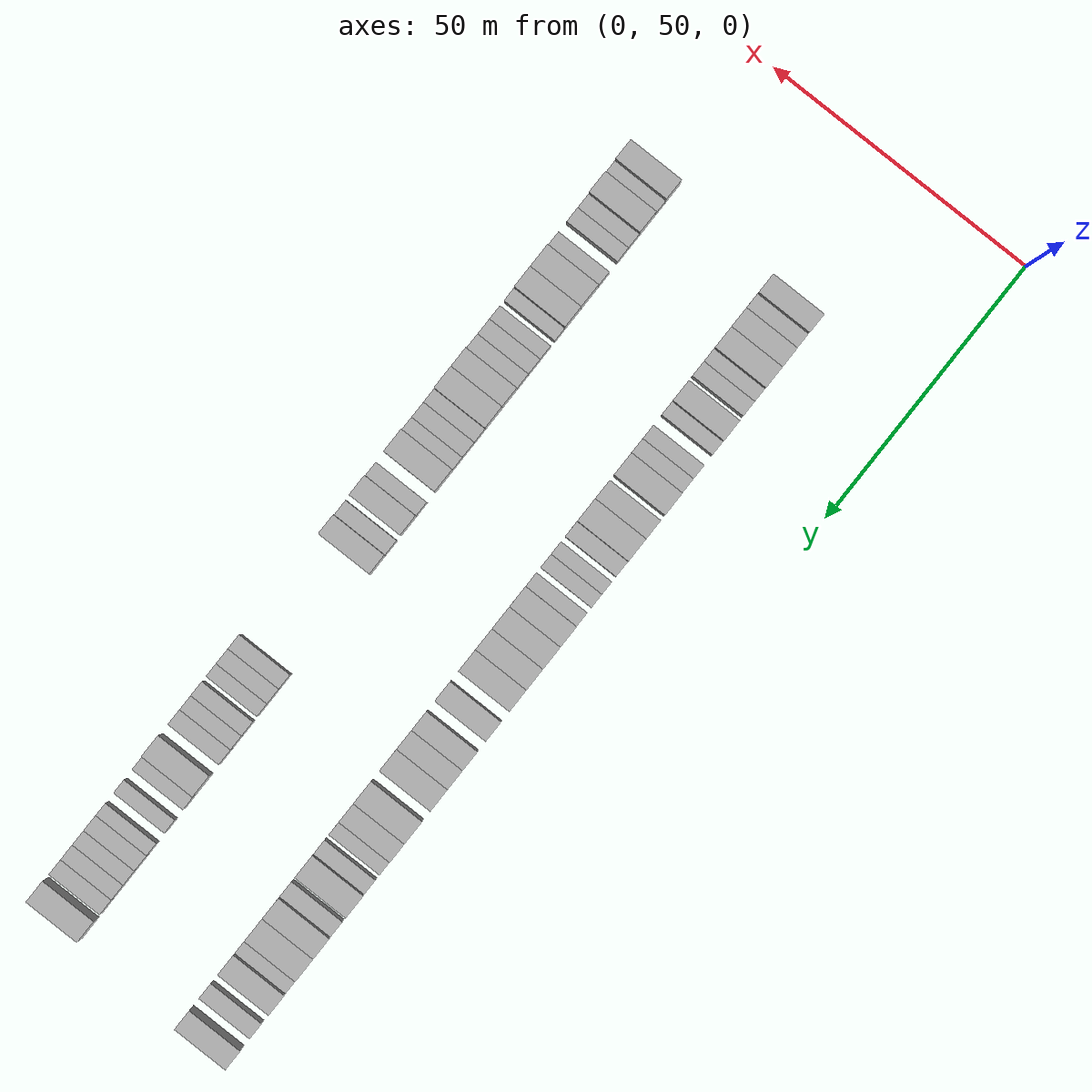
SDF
<sdf version="1.6">
 <world name="default">
  <model name="building_73">
   <static>1</static>
   <pose>25.0000 77.7991 0 0.000000 0.000000 0.000000</pose>
   <link name="link">
    <pose>0 0 4.50 0 0 0</pose>
    <collision name="collision"><geometry><box><size>10.0000 3.6522 9.0000</size></box></geometry></collision>
    <visual name="visual">
     <cast_shadows>0</cast_shadows>
     <geometry><box><size>10.0000 3.6522 9.0000</size></box></geometry>
     <material>
      <script>
       <uri>model://HANNAS_wall/materials/scripts</uri>
       <uri>model://HANNAS_wall/materials/textures</uri>
       <name>vrc/HANNAS_wall</name>
      </script>
     </material>
    </visual>
   </link>
  </model>
  <model name="building_74">
   <static>1</static>
   <pose>25.0000 81.1143 0 0.000000 0.000000 0.000000</pose>
   <link name="link">
    <pose>0 0 3.00 0 0 0</pose>
    <collision name="collision"><geometry><box><size>10.0000 2.9782 6.0000</size></box></geometry></collision>
    <visual name="visual">
     <cast_shadows>0</cast_shadows>
     <geometry><box><size>10.0000 2.9782 6.0000</size></box></geometry>
     <material>
      <script>
       <uri>model://HANNAS_wall/materials/scripts</uri>
       <uri>model://HANNAS_wall/materials/textures</uri>
       <name>vrc/HANNAS_wall</name>
      </script>
     </material>
    </visual>
   </link>
  </model>
  <model name="building_75">
   <static>1</static>
   <pose>25.0000 84.4601 0 0.000000 0.000000 0.000000</pose>
   <link name="link">
    <pose>0 0 4.50 0 0 0</pose>
    <collision name="collision"><geometry><box><size>10.0000 3.7134 9.0000</size></box></geometry></collision>
    <visual name="visual">
     <cast_shadows>0</cast_shadows>
     <geometry><box><size>10.0000 3.7134 9.0000</size></box></geometry>
     <material>
      <script>
       <uri>model://HANNAS_wall/materials/scripts</uri>
       <uri>model://HANNAS_wall/materials/textures</uri>
       <name>vrc/HANNAS_wall</name>
      </script>
     </material>
    </visual>
   </link>
  </model>
  <model name="building_76">
   <static>1</static>
   <pose>25.0000 88.3780 0 0.000000 0.000000 0.000000</pose>
   <link name="link">
    <pose>0 0 4.50 0 0 0</pose>
    <collision name="collision"><geometry><box><size>10.0000 4.1222 9.0000</size></box></geometry></collision>
    <visual name="visual">
     <cast_shadows>0</cast_shadows>
     <geometry><box><size>10.0000 4.1222 9.0000</size></box></geometry>
     <material>
      <script>
       <uri>model://HANNAS_wall/materials/scripts</uri>
       <uri>model://HANNAS_wall/materials/textures</uri>
       <name>vrc/HANNAS_wall</name>
      </script>
     </material>
    </visual>
   </link>
  </model>
  <model name="building_77">
   <static>1</static>
   <pose>25.0000 91.6928 0 0.000000 0.000000 0.000000</pose>
   <link name="link">
    <pose>0 0 3.00 0 0 0</pose>
    <collision name="collision"><geometry><box><size>10.0000 2.5074 6.0000</size></box></geometry></collision>
    <visual name="visual">
     <cast_shadows>0</cast_shadows>
     <geometry><box><size>10.0000 2.5074 6.0000</size></box></geometry>
     <material>
      <script>
       <uri>model://HANNAS_wall/materials/scripts</uri>
       <uri>model://HANNAS_wall/materials/textures</uri>
       <name>vrc/HANNAS_wall</name>
      </script>
     </material>
    </visual>
   </link>
  </model>
  <model name="building_78">
   <static>1</static>
   <pose>25.0000 94.3955 0 0.000000 0.000000 0.000000</pose>
   <link name="link">
    <pose>0 0 3.00 0 0 0</pose>
    <collision name="collision"><geometry><box><size>10.0000 2.8981 6.0000</size></box></geometry></collision>
    <visual name="visual">
     <cast_shadows>0</cast_shadows>
     <geometry><box><size>10.0000 2.8981 6.0000</size></box></geometry>
     <material>
      <script>
       <uri>model://HANNAS_wall/materials/scripts</uri>
       <uri>model://HANNAS_wall/materials/textures</uri>
       <name>vrc/HANNAS_wall</name>
      </script>
     </material>
    </visual>
   </link>
  </model>
  <model name="building_79">
   <static>1</static>
   <pose>25.0000 98.8417 0 0.000000 0.000000 0.000000</pose>
   <link name="link">
    <pose>0 0 4.50 0 0 0</pose>
    <collision name="collision"><geometry><box><size>10.0000 3.9943 9.0000</size></box></geometry></collision>
    <visual name="visual">
     <cast_shadows>0</cast_shadows>
     <geometry><box><size>10.0000 3.9943 9.0000</size></box></geometry>
     <material>
      <script>
       <uri>model://HANNAS_wall/materials/scripts</uri>
       <uri>model://HANNAS_wall/materials/textures</uri>
       <name>vrc/HANNAS_wall</name>
      </script>
     </material>
    </visual>
   </link>
  </model>
  <model name="building_80">
   <static>1</static>
   <pose>25.0000 102.1693 0 0.000000 0.000000 0.000000</pose>
   <link name="link">
    <pose>0 0 3.00 0 0 0</pose>
    <collision name="collision"><geometry><box><size>10.0000 2.6611 6.0000</size></box></geometry></collision>
    <visual name="visual">
     <cast_shadows>0</cast_shadows>
     <geometry><box><size>10.0000 2.6611 6.0000</size></box></geometry>
     <material>
      <script>
       <uri>model://HANNAS_wall/materials/scripts</uri>
       <uri>model://HANNAS_wall/materials/textures</uri>
       <name>vrc/HANNAS_wall</name>
      </script>
     </material>
    </visual>
   </link>
  </model>
  <model name="building_81">
   <static>1</static>
   <pose>25.0000 106.8266 0 0.000000 0.000000 0.000000</pose>
   <link name="link">
    <pose>0 0 3.00 0 0 0</pose>
    <collision name="collision"><geometry><box><size>10.0000 2.6534 6.0000</size></box></geometry></collision>
    <visual name="visual">
     <cast_shadows>0</cast_shadows>
     <geometry><box><size>10.0000 2.6534 6.0000</size></box></geometry>
     <material>
      <script>
       <uri>model://HANNAS_wall/materials/scripts</uri>
       <uri>model://HANNAS_wall/materials/textures</uri>
       <name>vrc/HANNAS_wall</name>
      </script>
     </material>
    </visual>
   </link>
  </model>
  <model name="building_82">
   <static>1</static>
   <pose>25.0000 109.5996 0 0.000000 0.000000 0.000000</pose>
   <link name="link">
    <pose>0 0 3.00 0 0 0</pose>
    <collision name="collision"><geometry><box><size>10.0000 2.8927 6.0000</size></box></geometry></collision>
    <visual name="visual">
     <cast_shadows>0</cast_shadows>
     <geometry><box><size>10.0000 2.8927 6.0000</size></box></geometry>
     <material>
      <script>
       <uri>model://HANNAS_wall/materials/scripts</uri>
       <uri>model://HANNAS_wall/materials/textures</uri>
       <name>vrc/HANNAS_wall</name>
      </script>
     </material>
    </visual>
   </link>
  </model>
  <model name="building_83">
   <static>1</static>
   <pose>25.0000 113.2344 0 0.000000 0.000000 0.000000</pose>
   <link name="link">
    <pose>0 0 4.50 0 0 0</pose>
    <collision name="collision"><geometry><box><size>10.0000 4.3769 9.0000</size></box></geometry></collision>
    <visual name="visual">
     <cast_shadows>0</cast_shadows>
     <geometry><box><size>10.0000 4.3769 9.0000</size></box></geometry>
     <material>
      <script>
       <uri>model://HANNAS_wall/materials/scripts</uri>
       <uri>model://HANNAS_wall/materials/textures</uri>
       <name>vrc/HANNAS_wall</name>
      </script>
     </material>
    </visual>
   </link>
  </model>
  <model name="building_84">
   <static>1</static>
   <pose>25.0000 118.2288 0 0.000000 0.000000 0.000000</pose>
   <link name="link">
    <pose>0 0 4.50 0 0 0</pose>
    <collision name="collision"><geometry><box><size>10.0000 3.6120 9.0000</size></box></geometry></collision>
    <visual name="visual">
     <cast_shadows>0</cast_shadows>
     <geometry><box><size>10.0000 3.6120 9.0000</size></box></geometry>
     <material>
      <script>
       <uri>model://HANNAS_wall/materials/scripts</uri>
       <uri>model://HANNAS_wall/materials/textures</uri>
       <name>vrc/HANNAS_wall</name>
      </script>
     </material>
    </visual>
   </link>
  </model>
  <model name="building_85">
   <static>1</static>
   <pose>25.0000 122.2473 0 0.000000 0.000000 0.000000</pose>
   <link name="link">
    <pose>0 0 4.50 0 0 0</pose>
    <collision name="collision"><geometry><box><size>10.0000 4.4248 9.0000</size></box></geometry></collision>
    <visual name="visual">
     <cast_shadows>0</cast_shadows>
     <geometry><box><size>10.0000 4.4248 9.0000</size></box></geometry>
     <material>
      <script>
       <uri>model://HANNAS_wall/materials/scripts</uri>
       <uri>model://HANNAS_wall/materials/textures</uri>
       <name>vrc/HANNAS_wall</name>
      </script>
     </material>
    </visual>
   </link>
  </model>
  <model name="building_86">
   <static>1</static>
   <pose>25.0000 125.9503 0 0.000000 0.000000 0.000000</pose>
   <link name="link">
    <pose>0 0 3.00 0 0 0</pose>
    <collision name="collision"><geometry><box><size>10.0000 2.9812 6.0000</size></box></geometry></collision>
    <visual name="visual">
     <cast_shadows>0</cast_shadows>
     <geometry><box><size>10.0000 2.9812 6.0000</size></box></geometry>
     <material>
      <script>
       <uri>model://HANNAS_wall/materials/scripts</uri>
       <uri>model://HANNAS_wall/materials/textures</uri>
       <name>vrc/HANNAS_wall</name>
      </script>
     </material>
    </visual>
   </link>
  </model>
  <model name="building_87">
   <static>1</static>
   <pose>25.0000 129.6776 0 0.000000 0.000000 0.000000</pose>
   <link name="link">
    <pose>0 0 3.00 0 0 0</pose>
    <collision name="collision"><geometry><box><size>10.0000 2.4734 6.0000</size></box></geometry></collision>
    <visual name="visual">
     <cast_shadows>0</cast_shadows>
     <geometry><box><size>10.0000 2.4734 6.0000</size></box></geometry>
     <material>
      <script>
       <uri>model://HANNAS_wall/materials/scripts</uri>
       <uri>model://HANNAS_wall/materials/textures</uri>
       <name>vrc/HANNAS_wall</name>
      </script>
     </material>
    </visual>
   </link>
  </model>
  <model name="building_88">
   <static>1</static>
   <pose>25.0000 132.2294 0 0.000000 0.000000 0.000000</pose>
   <link name="link">
    <pose>0 0 3.00 0 0 0</pose>
    <collision name="collision"><geometry><box><size>10.0000 2.6303 6.0000</size></box></geometry></collision>
    <visual name="visual">
     <cast_shadows>0</cast_shadows>
     <geometry><box><size>10.0000 2.6303 6.0000</size></box></geometry>
     <material>
      <script>
       <uri>model://HANNAS_wall/materials/scripts</uri>
       <uri>model://HANNAS_wall/materials/textures</uri>
       <name>vrc/HANNAS_wall</name>
      </script>
     </material>
    </visual>
   </link>
  </model>
  <model name="building_89">
   <static>1</static>
   <pose>25.0000 135.8894 0 0.000000 0.000000 0.000000</pose>
   <link name="link">
    <pose>0 0 3.00 0 0 0</pose>
    <collision name="collision"><geometry><box><size>10.0000 2.6897 6.0000</size></box></geometry></collision>
    <visual name="visual">
     <cast_shadows>0</cast_shadows>
     <geometry><box><size>10.0000 2.6897 6.0000</size></box></geometry>
     <material>
      <script>
       <uri>model://HANNAS_wall/materials/scripts</uri>
       <uri>model://HANNAS_wall/materials/textures</uri>
       <name>vrc/HANNAS_wall</name>
      </script>
     </material>
    </visual>
   </link>
  </model>
  <model name="building_90">
   <static>1</static>
   <pose>25.0000 139.2452 0 0.000000 0.000000 0.000000</pose>
   <link name="link">
    <pose>0 0 4.50 0 0 0</pose>
    <collision name="collision"><geometry><box><size>10.0000 4.0219 9.0000</size></box></geometry></collision>
    <visual name="visual">
     <cast_shadows>0</cast_shadows>
     <geometry><box><size>10.0000 4.0219 9.0000</size></box></geometry>
     <material>
      <script>
       <uri>model://HANNAS_wall/materials/scripts</uri>
       <uri>model://HANNAS_wall/materials/textures</uri>
       <name>vrc/HANNAS_wall</name>
      </script>
     </material>
    </visual>
   </link>
  </model>
  <model name="building_91">
   <static>1</static>
   <pose>25.0000 143.4136 0 0.000000 0.000000 0.000000</pose>
   <link name="link">
    <pose>0 0 4.50 0 0 0</pose>
    <collision name="collision"><geometry><box><size>10.0000 4.3149 9.0000</size></box></geometry></collision>
    <visual name="visual">
     <cast_shadows>0</cast_shadows>
     <geometry><box><size>10.0000 4.3149 9.0000</size></box></geometry>
     <material>
      <script>
       <uri>model://HANNAS_wall/materials/scripts</uri>
       <uri>model://HANNAS_wall/materials/textures</uri>
       <name>vrc/HANNAS_wall</name>
      </script>
     </material>
    </visual>
   </link>
  </model>
  <model name="building_92">
   <static>1</static>
   <pose>25.0000 147.6198 0 0.000000 0.000000 0.000000</pose>
   <link name="link">
    <pose>0 0 4.50 0 0 0</pose>
    <collision name="collision"><geometry><box><size>10.0000 4.0975 9.0000</size></box></geometry></collision>
    <visual name="visual">
     <cast_shadows>0</cast_shadows>
     <geometry><box><size>10.0000 4.0975 9.0000</size></box></geometry>
     <material>
      <script>
       <uri>model://HANNAS_wall/materials/scripts</uri>
       <uri>model://HANNAS_wall/materials/textures</uri>
       <name>vrc/HANNAS_wall</name>
      </script>
     </material>
    </visual>
   </link>
  </model>
  <model name="building_93">
   <static>1</static>
   <pose>25.0000 151.7770 0 0.000000 0.000000 0.000000</pose>
   <link name="link">
    <pose>0 0 4.50 0 0 0</pose>
    <collision name="collision"><geometry><box><size>10.0000 4.2167 9.0000</size></box></geometry></collision>
    <visual name="visual">
     <cast_shadows>0</cast_shadows>
     <geometry><box><size>10.0000 4.2167 9.0000</size></box></geometry>
     <material>
      <script>
       <uri>model://HANNAS_wall/materials/scripts</uri>
       <uri>model://HANNAS_wall/materials/textures</uri>
       <name>vrc/HANNAS_wall</name>
      </script>
     </material>
    </visual>
   </link>
  </model>
  <model name="building_94">
   <static>1</static>
   <pose>25.0000 157.8093 0 0.000000 0.000000 0.000000</pose>
   <link name="link">
    <pose>0 0 4.50 0 0 0</pose>
    <collision name="collision"><geometry><box><size>10.0000 3.8479 9.0000</size></box></geometry></collision>
    <visual name="visual">
     <cast_shadows>0</cast_shadows>
     <geometry><box><size>10.0000 3.8479 9.0000</size></box></geometry>
     <material>
      <script>
       <uri>model://HANNAS_wall/materials/scripts</uri>
       <uri>model://HANNAS_wall/materials/textures</uri>
       <name>vrc/HANNAS_wall</name>
      </script>
     </material>
    </visual>
   </link>
  </model>
  <model name="building_95">
   <static>1</static>
   <pose>25.0000 163.5877 0 0.000000 0.000000 0.000000</pose>
   <link name="link">
    <pose>0 0 4.50 0 0 0</pose>
    <collision name="collision"><geometry><box><size>10.0000 3.7090 9.0000</size></box></geometry></collision>
    <visual name="visual">
     <cast_shadows>0</cast_shadows>
     <geometry><box><size>10.0000 3.7090 9.0000</size></box></geometry>
     <material>
      <script>
       <uri>model://HANNAS_wall/materials/scripts</uri>
       <uri>model://HANNAS_wall/materials/textures</uri>
       <name>vrc/HANNAS_wall</name>
      </script>
     </material>
    </visual>
   </link>
  </model>
  <model name="building_96">
   <static>1</static>
   <pose>25.0000 167.3024 0 0.000000 0.000000 0.000000</pose>
   <link name="link">
    <pose>0 0 4.50 0 0 0</pose>
    <collision name="collision"><geometry><box><size>10.0000 3.7203 9.0000</size></box></geometry></collision>
    <visual name="visual">
     <cast_shadows>0</cast_shadows>
     <geometry><box><size>10.0000 3.7203 9.0000</size></box></geometry>
     <material>
      <script>
       <uri>model://HANNAS_wall/materials/scripts</uri>
       <uri>model://HANNAS_wall/materials/textures</uri>
       <name>vrc/HANNAS_wall</name>
      </script>
     </material>
    </visual>
   </link>
  </model>
  <model name="building_97">
   <static>1</static>
   <pose>25.0000 171.2899 0 0.000000 0.000000 0.000000</pose>
   <link name="link">
    <pose>0 0 4.50 0 0 0</pose>
    <collision name="collision"><geometry><box><size>10.0000 4.2546 9.0000</size></box></geometry></collision>
    <visual name="visual">
     <cast_shadows>0</cast_shadows>
     <geometry><box><size>10.0000 4.2546 9.0000</size></box></geometry>
     <material>
      <script>
       <uri>model://HANNAS_wall/materials/scripts</uri>
       <uri>model://HANNAS_wall/materials/textures</uri>
       <name>vrc/HANNAS_wall</name>
      </script>
     </material>
    </visual>
   </link>
  </model>
  <model name="building_98">
   <static>1</static>
   <pose>25.0000 177.6212 0 0.000000 0.000000 0.000000</pose>
   <link name="link">
    <pose>0 0 4.50 0 0 0</pose>
    <collision name="collision"><geometry><box><size>10.0000 4.4081 9.0000</size></box></geometry></collision>
    <visual name="visual">
     <cast_shadows>0</cast_shadows>
     <geometry><box><size>10.0000 4.4081 9.0000</size></box></geometry>
     <material>
      <script>
       <uri>model://HANNAS_wall/materials/scripts</uri>
       <uri>model://HANNAS_wall/materials/textures</uri>
       <name>vrc/HANNAS_wall</name>
      </script>
     </material>
    </visual>
   </link>
  </model>
  <model name="building_99">
   <static>1</static>
   <pose>25.0000 181.6333 0 0.000000 0.000000 0.000000</pose>
   <link name="link">
    <pose>0 0 4.50 0 0 0</pose>
    <collision name="collision"><geometry><box><size>10.0000 3.6160 9.0000</size></box></geometry></collision>
    <visual name="visual">
     <cast_shadows>0</cast_shadows>
     <geometry><box><size>10.0000 3.6160 9.0000</size></box></geometry>
     <material>
      <script>
       <uri>model://HANNAS_wall/materials/scripts</uri>
       <uri>model://HANNAS_wall/materials/textures</uri>
       <name>vrc/HANNAS_wall</name>
      </script>
     </material>
    </visual>
   </link>
  </model>
  <model name="building_100">
   <static>1</static>
   <pose>25.0000 184.7807 0 0.000000 0.000000 0.000000</pose>
   <link name="link">
    <pose>0 0 3.00 0 0 0</pose>
    <collision name="collision"><geometry><box><size>10.0000 2.6788 6.0000</size></box></geometry></collision>
    <visual name="visual">
     <cast_shadows>0</cast_shadows>
     <geometry><box><size>10.0000 2.6788 6.0000</size></box></geometry>
     <material>
      <script>
       <uri>model://HANNAS_wall/materials/scripts</uri>
       <uri>model://HANNAS_wall/materials/textures</uri>
       <name>vrc/HANNAS_wall</name>
      </script>
     </material>
    </visual>
   </link>
  </model>
  <model name="building_101">
   <static>1</static>
   <pose>25.0000 188.5256 0 0.000000 0.000000 0.000000</pose>
   <link name="link">
    <pose>0 0 3.00 0 0 0</pose>
    <collision name="collision"><geometry><box><size>10.0000 2.8111 6.0000</size></box></geometry></collision>
    <visual name="visual">
     <cast_shadows>0</cast_shadows>
     <geometry><box><size>10.0000 2.8111 6.0000</size></box></geometry>
     <material>
      <script>
       <uri>model://HANNAS_wall/materials/scripts</uri>
       <uri>model://HANNAS_wall/materials/textures</uri>
       <name>vrc/HANNAS_wall</name>
      </script>
     </material>
    </visual>
   </link>
  </model>
  <model name="building_102">
   <static>1</static>
   <pose>25.0000 192.1229 0 0.000000 0.000000 0.000000</pose>
   <link name="link">
    <pose>0 0 4.50 0 0 0</pose>
    <collision name="collision"><geometry><box><size>10.0000 4.3834 9.0000</size></box></geometry></collision>
    <visual name="visual">
     <cast_shadows>0</cast_shadows>
     <geometry><box><size>10.0000 4.3834 9.0000</size></box></geometry>
     <material>
      <script>
       <uri>model://HANNAS_wall/materials/scripts</uri>
       <uri>model://HANNAS_wall/materials/textures</uri>
       <name>vrc/HANNAS_wall</name>
      </script>
     </material>
    </visual>
   </link>
  </model>
  <model name="building_103">
   <static>1</static>
   <pose>25.0000 196.8134 0 0.000000 0.000000 0.000000</pose>
   <link name="link">
    <pose>0 0 3.00 0 0 0</pose>
    <collision name="collision"><geometry><box><size>10.0000 2.9978 6.0000</size></box></geometry></collision>
    <visual name="visual">
     <cast_shadows>0</cast_shadows>
     <geometry><box><size>10.0000 2.9978 6.0000</size></box></geometry>
     <material>
      <script>
       <uri>model://HANNAS_wall/materials/scripts</uri>
       <uri>model://HANNAS_wall/materials/textures</uri>
       <name>vrc/HANNAS_wall</name>
      </script>
     </material>
    </visual>
   </link>
  </model>
  <model name="building_104">
   <static>1</static>
   <pose>25.0000 200.3307 0 0.000000 0.000000 0.000000</pose>
   <link name="link">
    <pose>0 0 4.50 0 0 0</pose>
    <collision name="collision"><geometry><box><size>10.0000 4.0368 9.0000</size></box></geometry></collision>
    <visual name="visual">
     <cast_shadows>0</cast_shadows>
     <geometry><box><size>10.0000 4.0368 9.0000</size></box></geometry>
     <material>
      <script>
       <uri>model://HANNAS_wall/materials/scripts</uri>
       <uri>model://HANNAS_wall/materials/textures</uri>
       <name>vrc/HANNAS_wall</name>
      </script>
     </material>
    </visual>
   </link>
  </model>
  <model name="building_105">
   <static>1</static>
   <pose>25.0000 204.5624 0 0.000000 0.000000 0.000000</pose>
   <link name="link">
    <pose>0 0 4.50 0 0 0</pose>
    <collision name="collision"><geometry><box><size>10.0000 4.4266 9.0000</size></box></geometry></collision>
    <visual name="visual">
     <cast_shadows>0</cast_shadows>
     <geometry><box><size>10.0000 4.4266 9.0000</size></box></geometry>
     <material>
      <script>
       <uri>model://HANNAS_wall/materials/scripts</uri>
       <uri>model://HANNAS_wall/materials/textures</uri>
       <name>vrc/HANNAS_wall</name>
      </script>
     </material>
    </visual>
   </link>
  </model>
  <model name="building_106">
   <static>1</static>
   <pose>25.0000 208.1058 0 0.000000 0.000000 0.000000</pose>
   <link name="link">
    <pose>0 0 3.00 0 0 0</pose>
    <collision name="collision"><geometry><box><size>10.0000 2.6601 6.0000</size></box></geometry></collision>
    <visual name="visual">
     <cast_shadows>0</cast_shadows>
     <geometry><box><size>10.0000 2.6601 6.0000</size></box></geometry>
     <material>
      <script>
       <uri>model://HANNAS_wall/materials/scripts</uri>
       <uri>model://HANNAS_wall/materials/textures</uri>
       <name>vrc/HANNAS_wall</name>
      </script>
     </material>
    </visual>
   </link>
  </model>
  <model name="building_107">
   <static>1</static>
   <pose>25.0000 211.3863 0 0.000000 0.000000 0.000000</pose>
   <link name="link">
    <pose>0 0 4.50 0 0 0</pose>
    <collision name="collision"><geometry><box><size>10.0000 3.9011 9.0000</size></box></geometry></collision>
    <visual name="visual">
     <cast_shadows>0</cast_shadows>
     <geometry><box><size>10.0000 3.9011 9.0000</size></box></geometry>
     <material>
      <script>
       <uri>model://HANNAS_wall/materials/scripts</uri>
       <uri>model://HANNAS_wall/materials/textures</uri>
       <name>vrc/HANNAS_wall</name>
      </script>
     </material>
    </visual>
   </link>
  </model>
  <model name="building_108">
   <static>1</static>
   <pose>25.0000 216.8209 0 0.000000 0.000000 0.000000</pose>
   <link name="link">
    <pose>0 0 3.00 0 0 0</pose>
    <collision name="collision"><geometry><box><size>10.0000 2.9682 6.0000</size></box></geometry></collision>
    <visual name="visual">
     <cast_shadows>0</cast_shadows>
     <geometry><box><size>10.0000 2.9682 6.0000</size></box></geometry>
     <material>
      <script>
       <uri>model://HANNAS_wall/materials/scripts</uri>
       <uri>model://HANNAS_wall/materials/textures</uri>
       <name>vrc/HANNAS_wall</name>
      </script>
     </material>
    </visual>
   </link>
  </model>
  <model name="building_109">
   <static>1</static>
   <pose>25.0000 222.1481 0 0.000000 0.000000 0.000000</pose>
   <link name="link">
    <pose>0 0 4.50 0 0 0</pose>
    <collision name="collision"><geometry><box><size>10.0000 3.6861 9.0000</size></box></geometry></collision>
    <visual name="visual">
     <cast_shadows>0</cast_shadows>
     <geometry><box><size>10.0000 3.6861 9.0000</size></box></geometry>
     <material>
      <script>
       <uri>model://HANNAS_wall/materials/scripts</uri>
       <uri>model://HANNAS_wall/materials/textures</uri>
       <name>vrc/HANNAS_wall</name>
      </script>
     </material>
    </visual>
   </link>
  </model>
  <model name="building_184">
   <static>1</static>
   <pose>55.0000 75.3017 0 0.000000 0.000000 0.000000</pose>
   <link name="link">
    <pose>0 0 4.50 0 0 0</pose>
    <collision name="collision"><geometry><box><size>10.0000 3.8139 9.0000</size></box></geometry></collision>
    <visual name="visual">
     <cast_shadows>0</cast_shadows>
     <geometry><box><size>10.0000 3.8139 9.0000</size></box></geometry>
     <material>
      <script>
       <uri>model://HANNAS_wall/materials/scripts</uri>
       <uri>model://HANNAS_wall/materials/textures</uri>
       <name>vrc/HANNAS_wall</name>
      </script>
     </material>
    </visual>
   </link>
  </model>
  <model name="building_185">
   <static>1</static>
   <pose>55.0000 78.4213 0 0.000000 0.000000 0.000000</pose>
   <link name="link">
    <pose>0 0 3.00 0 0 0</pose>
    <collision name="collision"><geometry><box><size>10.0000 2.4255 6.0000</size></box></geometry></collision>
    <visual name="visual">
     <cast_shadows>0</cast_shadows>
     <geometry><box><size>10.0000 2.4255 6.0000</size></box></geometry>
     <material>
      <script>
       <uri>model://HANNAS_wall/materials/scripts</uri>
       <uri>model://HANNAS_wall/materials/textures</uri>
       <name>vrc/HANNAS_wall</name>
      </script>
     </material>
    </visual>
   </link>
  </model>
  <model name="building_186">
   <static>1</static>
   <pose>55.0000 81.6905 0 0.000000 0.000000 0.000000</pose>
   <link name="link">
    <pose>0 0 4.50 0 0 0</pose>
    <collision name="collision"><geometry><box><size>10.0000 4.1129 9.0000</size></box></geometry></collision>
    <visual name="visual">
     <cast_shadows>0</cast_shadows>
     <geometry><box><size>10.0000 4.1129 9.0000</size></box></geometry>
     <material>
      <script>
       <uri>model://HANNAS_wall/materials/scripts</uri>
       <uri>model://HANNAS_wall/materials/textures</uri>
       <name>vrc/HANNAS_wall</name>
      </script>
     </material>
    </visual>
   </link>
  </model>
  <model name="building_187">
   <static>1</static>
   <pose>55.0000 85.1039 0 0.000000 0.000000 0.000000</pose>
   <link name="link">
    <pose>0 0 3.00 0 0 0</pose>
    <collision name="collision"><geometry><box><size>10.0000 2.7139 6.0000</size></box></geometry></collision>
    <visual name="visual">
     <cast_shadows>0</cast_shadows>
     <geometry><box><size>10.0000 2.7139 6.0000</size></box></geometry>
     <material>
      <script>
       <uri>model://HANNAS_wall/materials/scripts</uri>
       <uri>model://HANNAS_wall/materials/textures</uri>
       <name>vrc/HANNAS_wall</name>
      </script>
     </material>
    </visual>
   </link>
  </model>
  <model name="building_188">
   <static>1</static>
   <pose>55.0000 87.8392 0 0.000000 0.000000 0.000000</pose>
   <link name="link">
    <pose>0 0 3.00 0 0 0</pose>
    <collision name="collision"><geometry><box><size>10.0000 2.7565 6.0000</size></box></geometry></collision>
    <visual name="visual">
     <cast_shadows>0</cast_shadows>
     <geometry><box><size>10.0000 2.7565 6.0000</size></box></geometry>
     <material>
      <script>
       <uri>model://HANNAS_wall/materials/scripts</uri>
       <uri>model://HANNAS_wall/materials/textures</uri>
       <name>vrc/HANNAS_wall</name>
      </script>
     </material>
    </visual>
   </link>
  </model>
  <model name="building_189">
   <static>1</static>
   <pose>55.0000 92.5886 0 0.000000 0.000000 0.000000</pose>
   <link name="link">
    <pose>0 0 3.00 0 0 0</pose>
    <collision name="collision"><geometry><box><size>10.0000 2.7423 6.0000</size></box></geometry></collision>
    <visual name="visual">
     <cast_shadows>0</cast_shadows>
     <geometry><box><size>10.0000 2.7423 6.0000</size></box></geometry>
     <material>
      <script>
       <uri>model://HANNAS_wall/materials/scripts</uri>
       <uri>model://HANNAS_wall/materials/textures</uri>
       <name>vrc/HANNAS_wall</name>
      </script>
     </material>
    </visual>
   </link>
  </model>
  <model name="building_190">
   <static>1</static>
   <pose>55.0000 96.1141 0 0.000000 0.000000 0.000000</pose>
   <link name="link">
    <pose>0 0 4.50 0 0 0</pose>
    <collision name="collision"><geometry><box><size>10.0000 4.3088 9.0000</size></box></geometry></collision>
    <visual name="visual">
     <cast_shadows>0</cast_shadows>
     <geometry><box><size>10.0000 4.3088 9.0000</size></box></geometry>
     <material>
      <script>
       <uri>model://HANNAS_wall/materials/scripts</uri>
       <uri>model://HANNAS_wall/materials/textures</uri>
       <name>vrc/HANNAS_wall</name>
      </script>
     </material>
    </visual>
   </link>
  </model>
  <model name="building_191">
   <static>1</static>
   <pose>55.0000 100.2753 0 0.000000 0.000000 0.000000</pose>
   <link name="link">
    <pose>0 0 4.50 0 0 0</pose>
    <collision name="collision"><geometry><box><size>10.0000 4.0135 9.0000</size></box></geometry></collision>
    <visual name="visual">
     <cast_shadows>0</cast_shadows>
     <geometry><box><size>10.0000 4.0135 9.0000</size></box></geometry>
     <material>
      <script>
       <uri>model://HANNAS_wall/materials/scripts</uri>
       <uri>model://HANNAS_wall/materials/textures</uri>
       <name>vrc/HANNAS_wall</name>
      </script>
     </material>
    </visual>
   </link>
  </model>
  <model name="building_192">
   <static>1</static>
   <pose>55.0000 103.5336 0 0.000000 0.000000 0.000000</pose>
   <link name="link">
    <pose>0 0 3.00 0 0 0</pose>
    <collision name="collision"><geometry><box><size>10.0000 2.5030 6.0000</size></box></geometry></collision>
    <visual name="visual">
     <cast_shadows>0</cast_shadows>
     <geometry><box><size>10.0000 2.5030 6.0000</size></box></geometry>
     <material>
      <script>
       <uri>model://HANNAS_wall/materials/scripts</uri>
       <uri>model://HANNAS_wall/materials/textures</uri>
       <name>vrc/HANNAS_wall</name>
      </script>
     </material>
    </visual>
   </link>
  </model>
  <model name="building_193">
   <static>1</static>
   <pose>55.0000 107.0838 0 0.000000 0.000000 0.000000</pose>
   <link name="link">
    <pose>0 0 3.00 0 0 0</pose>
    <collision name="collision"><geometry><box><size>10.0000 2.5974 6.0000</size></box></geometry></collision>
    <visual name="visual">
     <cast_shadows>0</cast_shadows>
     <geometry><box><size>10.0000 2.5974 6.0000</size></box></geometry>
     <material>
      <script>
       <uri>model://HANNAS_wall/materials/scripts</uri>
       <uri>model://HANNAS_wall/materials/textures</uri>
       <name>vrc/HANNAS_wall</name>
      </script>
     </material>
    </visual>
   </link>
  </model>
  <model name="building_194">
   <static>1</static>
   <pose>55.0000 109.8556 0 0.000000 0.000000 0.000000</pose>
   <link name="link">
    <pose>0 0 3.00 0 0 0</pose>
    <collision name="collision"><geometry><box><size>10.0000 2.9463 6.0000</size></box></geometry></collision>
    <visual name="visual">
     <cast_shadows>0</cast_shadows>
     <geometry><box><size>10.0000 2.9463 6.0000</size></box></geometry>
     <material>
      <script>
       <uri>model://HANNAS_wall/materials/scripts</uri>
       <uri>model://HANNAS_wall/materials/textures</uri>
       <name>vrc/HANNAS_wall</name>
      </script>
     </material>
    </visual>
   </link>
  </model>
  <model name="building_195">
   <static>1</static>
   <pose>55.0000 112.7685 0 0.000000 0.000000 0.000000</pose>
   <link name="link">
    <pose>0 0 3.00 0 0 0</pose>
    <collision name="collision"><geometry><box><size>10.0000 2.8795 6.0000</size></box></geometry></collision>
    <visual name="visual">
     <cast_shadows>0</cast_shadows>
     <geometry><box><size>10.0000 2.8795 6.0000</size></box></geometry>
     <material>
      <script>
       <uri>model://HANNAS_wall/materials/scripts</uri>
       <uri>model://HANNAS_wall/materials/textures</uri>
       <name>vrc/HANNAS_wall</name>
      </script>
     </material>
    </visual>
   </link>
  </model>
  <model name="building_196">
   <static>1</static>
   <pose>55.0000 116.0379 0 0.000000 0.000000 0.000000</pose>
   <link name="link">
    <pose>0 0 4.50 0 0 0</pose>
    <collision name="collision"><geometry><box><size>10.0000 3.6593 9.0000</size></box></geometry></collision>
    <visual name="visual">
     <cast_shadows>0</cast_shadows>
     <geometry><box><size>10.0000 3.6593 9.0000</size></box></geometry>
     <material>
      <script>
       <uri>model://HANNAS_wall/materials/scripts</uri>
       <uri>model://HANNAS_wall/materials/textures</uri>
       <name>vrc/HANNAS_wall</name>
      </script>
     </material>
    </visual>
   </link>
  </model>
  <model name="building_197">
   <static>1</static>
   <pose>55.0000 119.9886 0 0.000000 0.000000 0.000000</pose>
   <link name="link">
    <pose>0 0 4.50 0 0 0</pose>
    <collision name="collision"><geometry><box><size>10.0000 4.2420 9.0000</size></box></geometry></collision>
    <visual name="visual">
     <cast_shadows>0</cast_shadows>
     <geometry><box><size>10.0000 4.2420 9.0000</size></box></geometry>
     <material>
      <script>
       <uri>model://HANNAS_wall/materials/scripts</uri>
       <uri>model://HANNAS_wall/materials/textures</uri>
       <name>vrc/HANNAS_wall</name>
      </script>
     </material>
    </visual>
   </link>
  </model>
  <model name="building_198">
   <static>1</static>
   <pose>55.0000 123.4378 0 0.000000 0.000000 0.000000</pose>
   <link name="link">
    <pose>0 0 3.00 0 0 0</pose>
    <collision name="collision"><geometry><box><size>10.0000 2.6564 6.0000</size></box></geometry></collision>
    <visual name="visual">
     <cast_shadows>0</cast_shadows>
     <geometry><box><size>10.0000 2.6564 6.0000</size></box></geometry>
     <material>
      <script>
       <uri>model://HANNAS_wall/materials/scripts</uri>
       <uri>model://HANNAS_wall/materials/textures</uri>
       <name>vrc/HANNAS_wall</name>
      </script>
     </material>
    </visual>
   </link>
  </model>
  <model name="building_199">
   <static>1</static>
   <pose>55.0000 126.2490 0 0.000000 0.000000 0.000000</pose>
   <link name="link">
    <pose>0 0 3.00 0 0 0</pose>
    <collision name="collision"><geometry><box><size>10.0000 2.9661 6.0000</size></box></geometry></collision>
    <visual name="visual">
     <cast_shadows>0</cast_shadows>
     <geometry><box><size>10.0000 2.9661 6.0000</size></box></geometry>
     <material>
      <script>
       <uri>model://HANNAS_wall/materials/scripts</uri>
       <uri>model://HANNAS_wall/materials/textures</uri>
       <name>vrc/HANNAS_wall</name>
      </script>
     </material>
    </visual>
   </link>
  </model>
  <model name="building_200">
   <static>1</static>
   <pose>55.0000 128.9521 0 0.000000 0.000000 0.000000</pose>
   <link name="link">
    <pose>0 0 3.00 0 0 0</pose>
    <collision name="collision"><geometry><box><size>10.0000 2.4400 6.0000</size></box></geometry></collision>
    <visual name="visual">
     <cast_shadows>0</cast_shadows>
     <geometry><box><size>10.0000 2.4400 6.0000</size></box></geometry>
     <material>
      <script>
       <uri>model://HANNAS_wall/materials/scripts</uri>
       <uri>model://HANNAS_wall/materials/textures</uri>
       <name>vrc/HANNAS_wall</name>
      </script>
     </material>
    </visual>
   </link>
  </model>
  <model name="building_201">
   <static>1</static>
   <pose>55.0000 132.3741 0 0.000000 0.000000 0.000000</pose>
   <link name="link">
    <pose>0 0 4.50 0 0 0</pose>
    <collision name="collision"><geometry><box><size>10.0000 4.4039 9.0000</size></box></geometry></collision>
    <visual name="visual">
     <cast_shadows>0</cast_shadows>
     <geometry><box><size>10.0000 4.4039 9.0000</size></box></geometry>
     <material>
      <script>
       <uri>model://HANNAS_wall/materials/scripts</uri>
       <uri>model://HANNAS_wall/materials/textures</uri>
       <name>vrc/HANNAS_wall</name>
      </script>
     </material>
    </visual>
   </link>
  </model>
  <model name="building_202">
   <static>1</static>
   <pose>55.0000 137.9028 0 0.000000 0.000000 0.000000</pose>
   <link name="link">
    <pose>0 0 3.00 0 0 0</pose>
    <collision name="collision"><geometry><box><size>10.0000 2.6535 6.0000</size></box></geometry></collision>
    <visual name="visual">
     <cast_shadows>0</cast_shadows>
     <geometry><box><size>10.0000 2.6535 6.0000</size></box></geometry>
     <material>
      <script>
       <uri>model://HANNAS_wall/materials/scripts</uri>
       <uri>model://HANNAS_wall/materials/textures</uri>
       <name>vrc/HANNAS_wall</name>
      </script>
     </material>
    </visual>
   </link>
  </model>
  <model name="building_203">
   <static>1</static>
   <pose>55.0000 141.1583 0 0.000000 0.000000 0.000000</pose>
   <link name="link">
    <pose>0 0 4.50 0 0 0</pose>
    <collision name="collision"><geometry><box><size>10.0000 3.8576 9.0000</size></box></geometry></collision>
    <visual name="visual">
     <cast_shadows>0</cast_shadows>
     <geometry><box><size>10.0000 3.8576 9.0000</size></box></geometry>
     <material>
      <script>
       <uri>model://HANNAS_wall/materials/scripts</uri>
       <uri>model://HANNAS_wall/materials/textures</uri>
       <name>vrc/HANNAS_wall</name>
      </script>
     </material>
    </visual>
   </link>
  </model>
  <model name="building_204">
   <static>1</static>
   <pose>55.0000 145.5192 0 0.000000 0.000000 0.000000</pose>
   <link name="link">
    <pose>0 0 3.00 0 0 0</pose>
    <collision name="collision"><geometry><box><size>10.0000 2.8643 6.0000</size></box></geometry></collision>
    <visual name="visual">
     <cast_shadows>0</cast_shadows>
     <geometry><box><size>10.0000 2.8643 6.0000</size></box></geometry>
     <material>
      <script>
       <uri>model://HANNAS_wall/materials/scripts</uri>
       <uri>model://HANNAS_wall/materials/textures</uri>
       <name>vrc/HANNAS_wall</name>
      </script>
     </material>
    </visual>
   </link>
  </model>
  <model name="building_205">
   <static>1</static>
   <pose>55.0000 148.8272 0 0.000000 0.000000 0.000000</pose>
   <link name="link">
    <pose>0 0 4.50 0 0 0</pose>
    <collision name="collision"><geometry><box><size>10.0000 3.7517 9.0000</size></box></geometry></collision>
    <visual name="visual">
     <cast_shadows>0</cast_shadows>
     <geometry><box><size>10.0000 3.7517 9.0000</size></box></geometry>
     <material>
      <script>
       <uri>model://HANNAS_wall/materials/scripts</uri>
       <uri>model://HANNAS_wall/materials/textures</uri>
       <name>vrc/HANNAS_wall</name>
      </script>
     </material>
    </visual>
   </link>
  </model>
  <model name="building_206">
   <static>1</static>
   <pose>55.0000 171.9144 0 0.000000 0.000000 0.000000</pose>
   <link name="link">
    <pose>0 0 3.00 0 0 0</pose>
    <collision name="collision"><geometry><box><size>10.0000 2.8076 6.0000</size></box></geometry></collision>
    <visual name="visual">
     <cast_shadows>0</cast_shadows>
     <geometry><box><size>10.0000 2.8076 6.0000</size></box></geometry>
     <material>
      <script>
       <uri>model://HANNAS_wall/materials/scripts</uri>
       <uri>model://HANNAS_wall/materials/textures</uri>
       <name>vrc/HANNAS_wall</name>
      </script>
     </material>
    </visual>
   </link>
  </model>
  <model name="building_207">
   <static>1</static>
   <pose>55.0000 174.7796 0 0.000000 0.000000 0.000000</pose>
   <link name="link">
    <pose>0 0 3.00 0 0 0</pose>
    <collision name="collision"><geometry><box><size>10.0000 2.9228 6.0000</size></box></geometry></collision>
    <visual name="visual">
     <cast_shadows>0</cast_shadows>
     <geometry><box><size>10.0000 2.9228 6.0000</size></box></geometry>
     <material>
      <script>
       <uri>model://HANNAS_wall/materials/scripts</uri>
       <uri>model://HANNAS_wall/materials/textures</uri>
       <name>vrc/HANNAS_wall</name>
      </script>
     </material>
    </visual>
   </link>
  </model>
  <model name="building_208">
   <static>1</static>
   <pose>55.0000 177.4921 0 0.000000 0.000000 0.000000</pose>
   <link name="link">
    <pose>0 0 3.00 0 0 0</pose>
    <collision name="collision"><geometry><box><size>10.0000 2.5023 6.0000</size></box></geometry></collision>
    <visual name="visual">
     <cast_shadows>0</cast_shadows>
     <geometry><box><size>10.0000 2.5023 6.0000</size></box></geometry>
     <material>
      <script>
       <uri>model://HANNAS_wall/materials/scripts</uri>
       <uri>model://HANNAS_wall/materials/textures</uri>
       <name>vrc/HANNAS_wall</name>
      </script>
     </material>
    </visual>
   </link>
  </model>
  <model name="building_209">
   <static>1</static>
   <pose>55.0000 181.1410 0 0.000000 0.000000 0.000000</pose>
   <link name="link">
    <pose>0 0 3.00 0 0 0</pose>
    <collision name="collision"><geometry><box><size>10.0000 2.7954 6.0000</size></box></geometry></collision>
    <visual name="visual">
     <cast_shadows>0</cast_shadows>
     <geometry><box><size>10.0000 2.7954 6.0000</size></box></geometry>
     <material>
      <script>
       <uri>model://HANNAS_wall/materials/scripts</uri>
       <uri>model://HANNAS_wall/materials/textures</uri>
       <name>vrc/HANNAS_wall</name>
      </script>
     </material>
    </visual>
   </link>
  </model>
  <model name="building_210">
   <static>1</static>
   <pose>55.0000 183.9121 0 0.000000 0.000000 0.000000</pose>
   <link name="link">
    <pose>0 0 3.00 0 0 0</pose>
    <collision name="collision"><geometry><box><size>10.0000 2.7470 6.0000</size></box></geometry></collision>
    <visual name="visual">
     <cast_shadows>0</cast_shadows>
     <geometry><box><size>10.0000 2.7470 6.0000</size></box></geometry>
     <material>
      <script>
       <uri>model://HANNAS_wall/materials/scripts</uri>
       <uri>model://HANNAS_wall/materials/textures</uri>
       <name>vrc/HANNAS_wall</name>
      </script>
     </material>
    </visual>
   </link>
  </model>
  <model name="building_211">
   <static>1</static>
   <pose>55.0000 186.7462 0 0.000000 0.000000 0.000000</pose>
   <link name="link">
    <pose>0 0 3.00 0 0 0</pose>
    <collision name="collision"><geometry><box><size>10.0000 2.9212 6.0000</size></box></geometry></collision>
    <visual name="visual">
     <cast_shadows>0</cast_shadows>
     <geometry><box><size>10.0000 2.9212 6.0000</size></box></geometry>
     <material>
      <script>
       <uri>model://HANNAS_wall/materials/scripts</uri>
       <uri>model://HANNAS_wall/materials/textures</uri>
       <name>vrc/HANNAS_wall</name>
      </script>
     </material>
    </visual>
   </link>
  </model>
  <model name="building_212">
   <static>1</static>
   <pose>55.0000 192.2919 0 0.000000 0.000000 0.000000</pose>
   <link name="link">
    <pose>0 0 4.50 0 0 0</pose>
    <collision name="collision"><geometry><box><size>10.0000 4.1702 9.0000</size></box></geometry></collision>
    <visual name="visual">
     <cast_shadows>0</cast_shadows>
     <geometry><box><size>10.0000 4.1702 9.0000</size></box></geometry>
     <material>
      <script>
       <uri>model://HANNAS_wall/materials/scripts</uri>
       <uri>model://HANNAS_wall/materials/textures</uri>
       <name>vrc/HANNAS_wall</name>
      </script>
     </material>
    </visual>
   </link>
  </model>
  <model name="building_213">
   <static>1</static>
   <pose>55.0000 195.7270 0 0.000000 0.000000 0.000000</pose>
   <link name="link">
    <pose>0 0 3.00 0 0 0</pose>
    <collision name="collision"><geometry><box><size>10.0000 2.6999 6.0000</size></box></geometry></collision>
    <visual name="visual">
     <cast_shadows>0</cast_shadows>
     <geometry><box><size>10.0000 2.6999 6.0000</size></box></geometry>
     <material>
      <script>
       <uri>model://HANNAS_wall/materials/scripts</uri>
       <uri>model://HANNAS_wall/materials/textures</uri>
       <name>vrc/HANNAS_wall</name>
      </script>
     </material>
    </visual>
   </link>
  </model>
  <model name="building_214">
   <static>1</static>
   <pose>55.0000 200.3761 0 0.000000 0.000000 0.000000</pose>
   <link name="link">
    <pose>0 0 3.00 0 0 0</pose>
    <collision name="collision"><geometry><box><size>10.0000 2.5984 6.0000</size></box></geometry></collision>
    <visual name="visual">
     <cast_shadows>0</cast_shadows>
     <geometry><box><size>10.0000 2.5984 6.0000</size></box></geometry>
     <material>
      <script>
       <uri>model://HANNAS_wall/materials/scripts</uri>
       <uri>model://HANNAS_wall/materials/textures</uri>
       <name>vrc/HANNAS_wall</name>
      </script>
     </material>
    </visual>
   </link>
  </model>
  <model name="building_215">
   <static>1</static>
   <pose>55.0000 204.8849 0 0.000000 0.000000 0.000000</pose>
   <link name="link">
    <pose>0 0 3.00 0 0 0</pose>
    <collision name="collision"><geometry><box><size>10.0000 2.4192 6.0000</size></box></geometry></collision>
    <visual name="visual">
     <cast_shadows>0</cast_shadows>
     <geometry><box><size>10.0000 2.4192 6.0000</size></box></geometry>
     <material>
      <script>
       <uri>model://HANNAS_wall/materials/scripts</uri>
       <uri>model://HANNAS_wall/materials/textures</uri>
       <name>vrc/HANNAS_wall</name>
      </script>
     </material>
    </visual>
   </link>
  </model>
  <model name="building_216">
   <static>1</static>
   <pose>55.0000 207.5918 0 0.000000 0.000000 0.000000</pose>
   <link name="link">
    <pose>0 0 3.00 0 0 0</pose>
    <collision name="collision"><geometry><box><size>10.0000 2.9946 6.0000</size></box></geometry></collision>
    <visual name="visual">
     <cast_shadows>0</cast_shadows>
     <geometry><box><size>10.0000 2.9946 6.0000</size></box></geometry>
     <material>
      <script>
       <uri>model://HANNAS_wall/materials/scripts</uri>
       <uri>model://HANNAS_wall/materials/textures</uri>
       <name>vrc/HANNAS_wall</name>
      </script>
     </material>
    </visual>
   </link>
  </model>
  <model name="building_217">
   <static>1</static>
   <pose>55.0000 210.4923 0 0.000000 0.000000 0.000000</pose>
   <link name="link">
    <pose>0 0 3.00 0 0 0</pose>
    <collision name="collision"><geometry><box><size>10.0000 2.8064 6.0000</size></box></geometry></collision>
    <visual name="visual">
     <cast_shadows>0</cast_shadows>
     <geometry><box><size>10.0000 2.8064 6.0000</size></box></geometry>
     <material>
      <script>
       <uri>model://HANNAS_wall/materials/scripts</uri>
       <uri>model://HANNAS_wall/materials/textures</uri>
       <name>vrc/HANNAS_wall</name>
      </script>
     </material>
    </visual>
   </link>
  </model>
  <model name="building_218">
   <static>1</static>
   <pose>55.0000 213.3449 0 0.000000 0.000000 0.000000</pose>
   <link name="link">
    <pose>0 0 3.00 0 0 0</pose>
    <collision name="collision"><geometry><box><size>10.0000 2.8988 6.0000</size></box></geometry></collision>
    <visual name="visual">
     <cast_shadows>0</cast_shadows>
     <geometry><box><size>10.0000 2.8988 6.0000</size></box></geometry>
     <material>
      <script>
       <uri>model://HANNAS_wall/materials/scripts</uri>
       <uri>model://HANNAS_wall/materials/textures</uri>
       <name>vrc/HANNAS_wall</name>
      </script>
     </material>
    </visual>
   </link>
  </model>
  <model name="building_219">
   <static>1</static>
   <pose>55.0000 216.2565 0 0.000000 0.000000 0.000000</pose>
   <link name="link">
    <pose>0 0 3.00 0 0 0</pose>
    <collision name="collision"><geometry><box><size>10.0000 2.9244 6.0000</size></box></geometry></collision>
    <visual name="visual">
     <cast_shadows>0</cast_shadows>
     <geometry><box><size>10.0000 2.9244 6.0000</size></box></geometry>
     <material>
      <script>
       <uri>model://HANNAS_wall/materials/scripts</uri>
       <uri>model://HANNAS_wall/materials/textures</uri>
       <name>vrc/HANNAS_wall</name>
      </script>
     </material>
    </visual>
   </link>
  </model>
  <model name="building_220">
   <static>1</static>
   <pose>55.0000 220.7802 0 0.000000 0.000000 0.000000</pose>
   <link name="link">
    <pose>0 0 4.50 0 0 0</pose>
    <collision name="collision"><geometry><box><size>10.0000 4.1230 9.0000</size></box></geometry></collision>
    <visual name="visual">
     <cast_shadows>0</cast_shadows>
     <geometry><box><size>10.0000 4.1230 9.0000</size></box></geometry>
     <material>
      <script>
       <uri>model://HANNAS_wall/materials/scripts</uri>
       <uri>model://HANNAS_wall/materials/textures</uri>
       <name>vrc/HANNAS_wall</name>
      </script>
     </material>
    </visual>
   </link>
  </model>
 </world>
</sdf>
